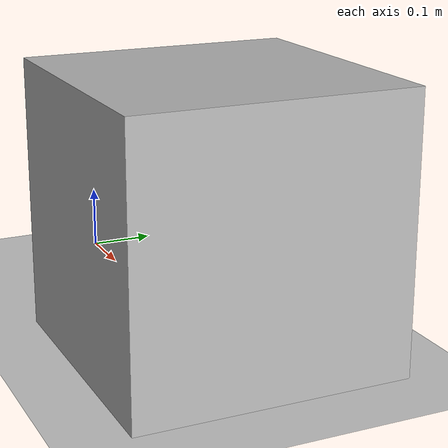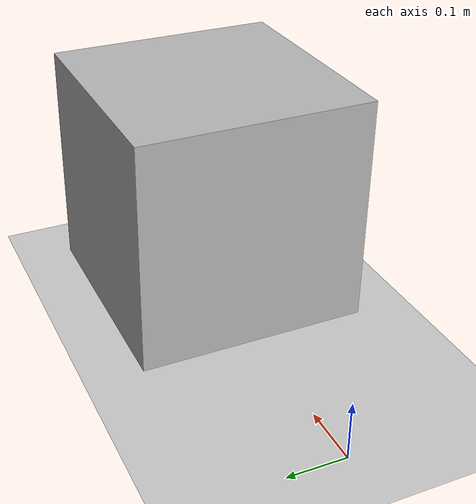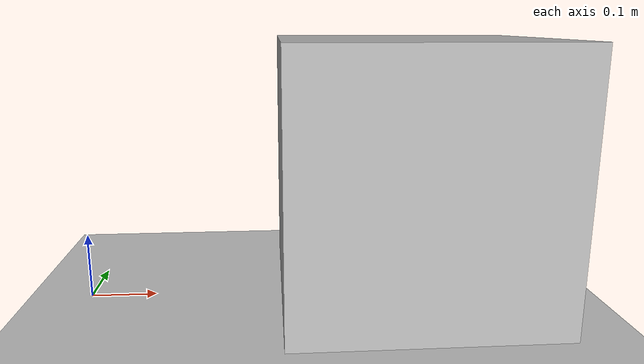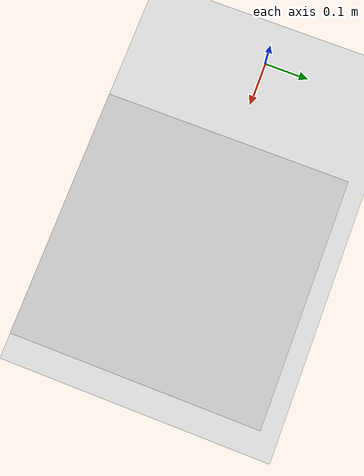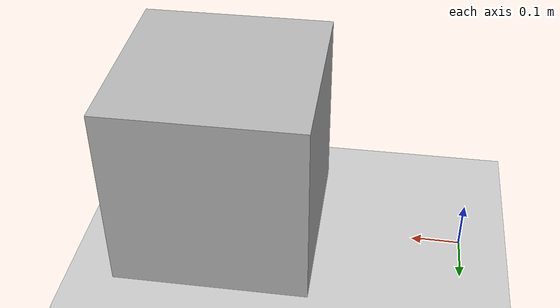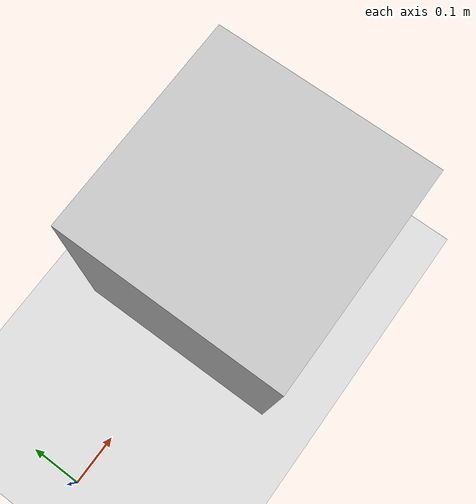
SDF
<?xml version="1.0" encoding="UTF-8" ?>
<sdf version="1.4">
  <world name="default">
    <!-- A global light source -->
    <include>
      <uri>model://sun</uri>
    </include>
    <!-- A ground plane -->
    <include>
      <uri>model://ground_plane</uri>
    </include>
    <!-- A box with tags -->
    <include>
      <uri>model://box36_11_00000</uri>
      <pose>0.5 0 0.2 0 0 0</pose>
    </include>
    <!-- Physics -->
    <physics type="ode">
      <gravity>0 0 -9.81</gravity>
      <ode>
        <solver>
          <type>quick</type>
          <iters>10</iters>
          <sor>1.3</sor>
        </solver>
        <constraints>
          <cfm>0.0</cfm>
          <erp>0.2</erp>
          <contact_max_correcting_vel>10</contact_max_correcting_vel>
          <contact_surface_layer>0.001</contact_surface_layer>
        </constraints>
      </ode>
      <max_step_size>0.001</max_step_size>
    </physics>
  </world>
</sdf>

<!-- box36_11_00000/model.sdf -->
<sdf version="1.5">
  <model name="box36_11_00000">
    <link name="base_link">
      <inertial>
        <mass>0.2</mass>
        <inertia>
          <ixx>0.5</ixx>
          <ixy>0</ixy>
          <ixz>0</ixz>
          <iyy>0.5</iyy>
          <iyz>0</iyz>
          <izz>0.5</izz>
        </inertia>
      </inertial>
      <collision name="collision">
        <geometry>
          <mesh>
            <uri>model://box36_11_00000/box.dae</uri>
          </mesh>
        </geometry>
      </collision>
      <visual name="visual">
        <geometry>
          <mesh>
            <uri>model://box36_11_00000/box.dae</uri>
          </mesh>
        </geometry>
      </visual>
    </link>
  </model>
</sdf>
